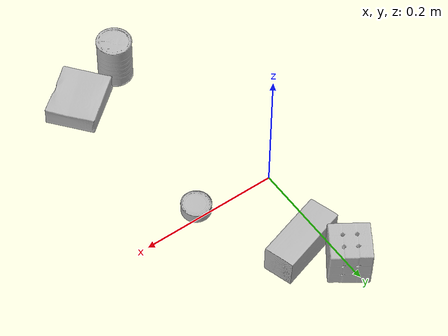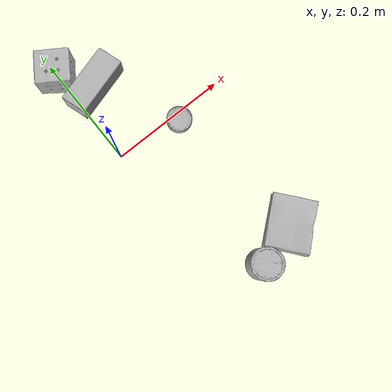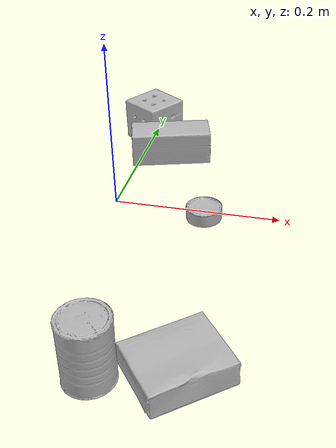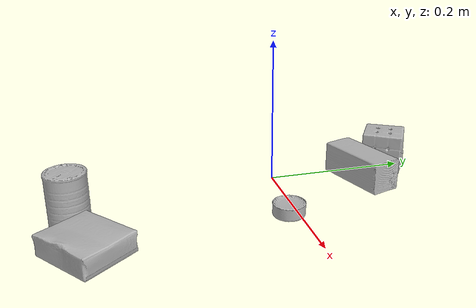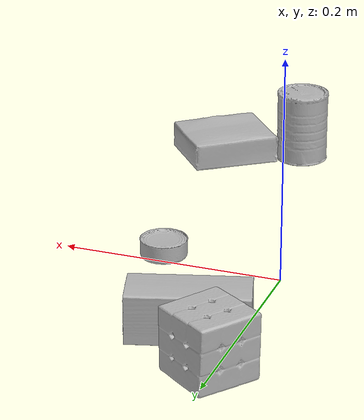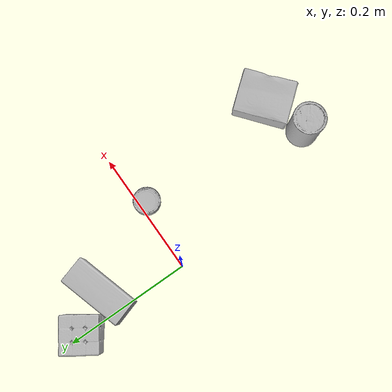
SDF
<sdf version="1.4">
  <world name="default">
    <light name="light1" type="point">
      <pose>0 0 1 0 0 0</pose>
      <diffuse>3 3 3 1</diffuse>
      <specular>3 3 3 1</specular>
    </light>
    <light name="light2" type="point">
      <pose>0 0.5 2 0 0 0</pose>
      <diffuse>1 1 1 1</diffuse>
      <specular>1 1 1 1</specular>
    </light>
    <light name="light3" type="point">
      <pose>0 0.5 2 0 0 0</pose>
      <diffuse>3 3 3 1</diffuse>
      <specular>3 3 3 1</specular>
    </light>
    <scene>
      <ambient>0.7 0.7 0.7</ambient>
    </scene>
    <model name="box1">
      <link name="link_box1">
        <collision name="default">
          <geometry>
            <mesh>
              <uri>model://rubiks_cube/collision_meshes/collision.obj</uri>
              <scale>1.0 1.0 1.0</scale>
            </mesh>
          </geometry>
          <surface>
            <friction>
              <ode>
                <mu>0.5</mu>
                <mu2>0.5</mu2>
              </ode>
            </friction>
          <contact>
        <ode>
            <max_vel>0</max_vel>
            <min_depth>0.0001</min_depth>
            <kp>1e8</kp>
        </ode>
    </contact></surface>
        </collision>
        <visual name="default">
          <geometry>
            <mesh>
              <uri>model://rubiks_cube/visual_meshes/visual.dae</uri>
              <scale>1.0 1.0 1.0</scale>
            </mesh>
          </geometry>
        </visual>
        <inertial>
          <mass>0.1675702929496765</mass>
          <pose>2.6721041649580002e-05 5.2569666877388954e-05 -7.264316082000732e-06 -0.054672410780645164 -0.09813946178663992 -0.034457105846518836</pose>
          <inertia>
            <ixx>9.259384e-05</ixx>
            <iyy>9.2162045e-05</iyy>
            <izz>9.336113e-05</izz>
            <ixy>0</ixy>
            <ixz>0</ixz>
            <iyz>0</iyz>
          </inertia>
        </inertial>
      </link>
      <pose>0.0015828628093004227 0.1755770742893219 0.028679009526968002 -8.152100390526238e-08 2.4681318287065987e-08 -0.5918215800828086</pose>
    </model>
    <model name="box2">
      <link name="link_box2">
        <collision name="default">
          <geometry>
            <mesh>
              <uri>model://wood_block/collision_meshes/collision.obj</uri>
              <scale>0.5 0.5 0.5</scale>
            </mesh>
          </geometry>
          <surface>
            <friction>
              <ode>
                <mu>0.5</mu>
                <mu2>0.5</mu2>
              </ode>
            </friction>
          <contact>
        <ode>
            <max_vel>0</max_vel>
            <min_depth>0.0001</min_depth>
            <kp>1e8</kp>
        </ode>
    </contact></surface>
        </collision>
        <visual name="default">
          <geometry>
            <mesh>
              <uri>model://wood_block/visual_meshes/visual.dae</uri>
              <scale>0.5 0.5 0.5</scale>
            </mesh>
          </geometry>
        </visual>
        <inertial>
          <mass>0.20594346523284912</mass>
          <pose>-2.9066577553749084e-06 -0.000285404734313488 0.00013204291462898254 -0.05220975528833662 -0.005192695571830849 -0.0068613788586691015</pose>
          <inertia>
            <ixx>6.8895875e-05</ixx>
            <iyy>0.0002176421</iyy>
            <izz>0.00021682802</izz>
            <ixy>0</ixy>
            <ixz>0</ixz>
            <iyz>0</iyz>
          </inertia>
        </inertial>
      </link>
      <pose>0.038676705211400986 0.12132976949214935 0.02262926660478115 -0.0052085055867093595 0.005718746057867755 0.2949929718184585</pose>
    </model>
    <model name="box3">
      <link name="link_box3">
        <collision name="default">
          <geometry>
            <mesh>
              <uri>model://gelatin_box/collision_meshes/collision.obj</uri>
              <scale>1.0 1.0 1.0</scale>
            </mesh>
          </geometry>
          <surface>
            <friction>
              <ode>
                <mu>0.5</mu>
                <mu2>0.5</mu2>
              </ode>
            </friction>
          <contact>
        <ode>
            <max_vel>0</max_vel>
            <min_depth>0.0001</min_depth>
            <kp>1e8</kp>
        </ode>
    </contact></surface>
        </collision>
        <visual name="default">
          <geometry>
            <mesh>
              <uri>model://gelatin_box/visual_meshes/visual.dae</uri>
              <scale>1.0 1.0 1.0</scale>
            </mesh>
          </geometry>
        </visual>
        <inertial>
          <mass>0.27371785044670105</mass>
          <pose>0.0004319618456065655 0.00011156871914863586 -0.0003640321083366871 -0.0010503717367230932 -0.004755817294347581 0.01644056133308036</pose>
          <inertia>
            <ixx>0.00019322247</ixx>
            <iyy>0.00013801781</iyy>
            <izz>0.00029412765</izz>
            <ixy>0</ixy>
            <ixz>0</ixz>
            <iyz>0</iyz>
          </inertia>
        </inertial>
      </link>
      <pose>0.14026924967765808 -0.2571573853492737 0.015168318524956703 0.005583540491871904 -0.007300070028188785 -0.8963206615913855</pose>
    </model>
    <model name="can1">
      <link name="link_can1">
        <collision name="default">
          <geometry>
            <mesh>
              <uri>model://master_chef_can/collision_meshes/collision.obj</uri>
              <scale>0.5 0.5 0.5</scale>
            </mesh>
          </geometry>
          <surface>
            <friction>
              <ode>
                <mu>0.5</mu>
                <mu2>0.5</mu2>
              </ode>
            </friction>
          <contact>
        <ode>
            <max_vel>0</max_vel>
            <min_depth>0.0001</min_depth>
            <kp>1e8</kp>
        </ode>
    </contact></surface>
        </collision>
        <visual name="default">
          <geometry>
            <mesh>
              <uri>model://master_chef_can/visual_meshes/visual.dae</uri>
              <scale>0.5 0.5 0.5</scale>
            </mesh>
          </geometry>
        </visual>
        <inertial>
          <mass>0.18439537286758423</mass>
          <pose>-4.6619643399026245e-05 1.3926847941547749e-07 -5.080040136817843e-05 -0.0017995053130472594 0.0006479450382529565 -0.6102509153361354</pose>
          <inertia>
            <ixx>0.00010822757</ixx>
            <iyy>0.00010743104</iyy>
            <izz>5.9804017e-05</izz>
            <ixy>0</ixy>
            <ixz>0</ixz>
            <iyz>0</iyz>
          </inertia>
        </inertial>
      </link>
      <pose>0.06597963720560074 -0.27698057889938354 0.03530226647853851 3.753578060053577e-05 -6.069745970604161e-05 -0.1876785626921372</pose>
    </model>
    <model name="can2">
      <link name="link_can2">
        <collision name="default">
          <geometry>
            <mesh>
              <uri>model://tuna_fish_can/collision_meshes/collision.obj</uri>
              <scale>0.5 0.5 0.5</scale>
            </mesh>
          </geometry>
          <surface>
            <friction>
              <ode>
                <mu>0.5</mu>
                <mu2>0.5</mu2>
              </ode>
            </friction>
          <contact>
        <ode>
            <max_vel>0</max_vel>
            <min_depth>0.0001</min_depth>
            <kp>1e8</kp>
        </ode>
    </contact></surface>
        </collision>
        <visual name="default">
          <geometry>
            <mesh>
              <uri>model://tuna_fish_can/visual_meshes/visual.dae</uri>
              <scale>0.5 0.5 0.5</scale>
            </mesh>
          </geometry>
        </visual>
        <inertial>
          <mass>0.02825223281979561</mass>
          <pose>-2.0362142095109448e-05 -7.256046956172213e-06 -0.0005269023240543902 -0.0017944745775900258 0.00017164550693472895 0.24055441971144348</pose>
          <inertia>
            <ixx>3.819744e-06</ixx>
            <iyy>3.803824e-06</iyy>
            <izz>6.536128e-06</izz>
            <ixy>0</ixy>
            <ixz>0</ixz>
            <iyz>0</iyz>
          </inertia>
        </inertial>
      </link>
      <pose>0.11245173960924149 -0.012828714214265347 0.008519998751580715 -3.4317148794957984e-09 1.1857095028146063e-08 1.423390618472727</pose>
    </model>
  <physics type="ode">
      <max_contacts>50</max_contacts>
      <ode>
        <solver>
          <type>quick</type>
          <iters>75</iters>
        </solver>
        <constraints>
          <contact_max_correcting_vel>0</contact_max_correcting_vel>
          <contact_surface_layer>0</contact_surface_layer>
        </constraints>
      </ode>
    </physics></world>
</sdf>
